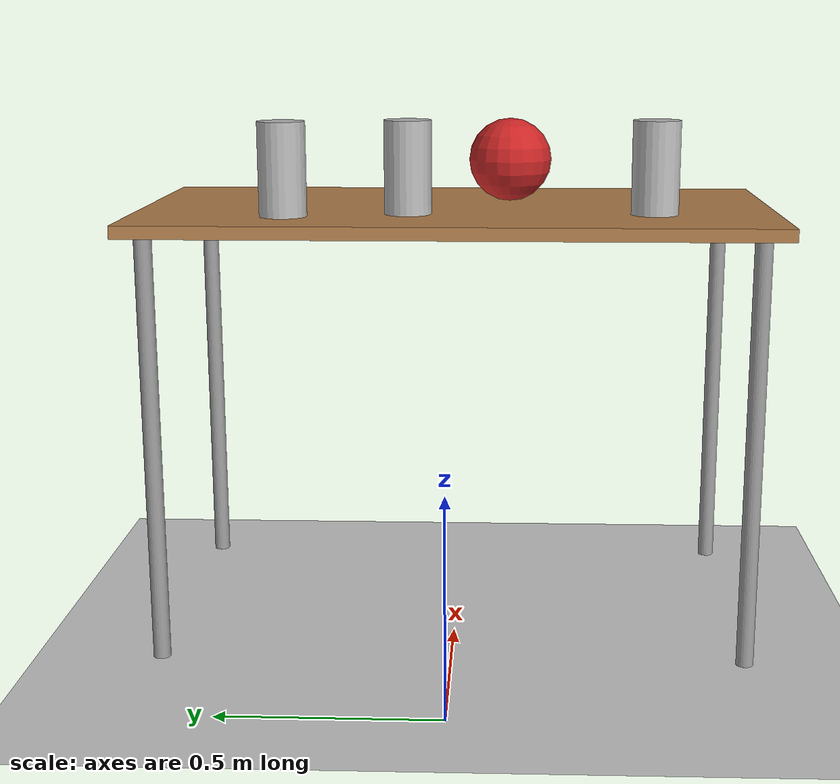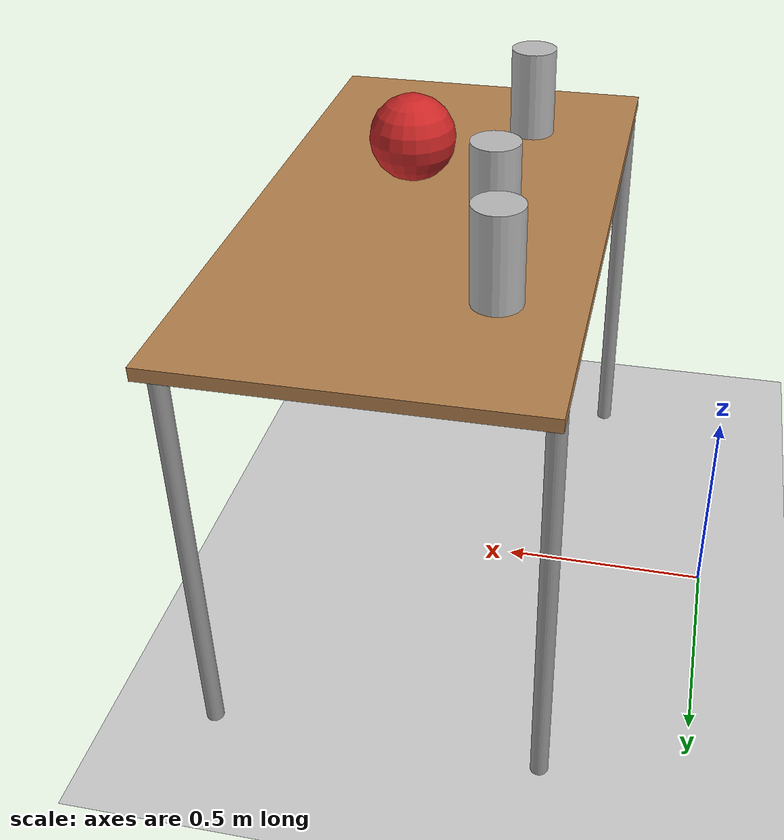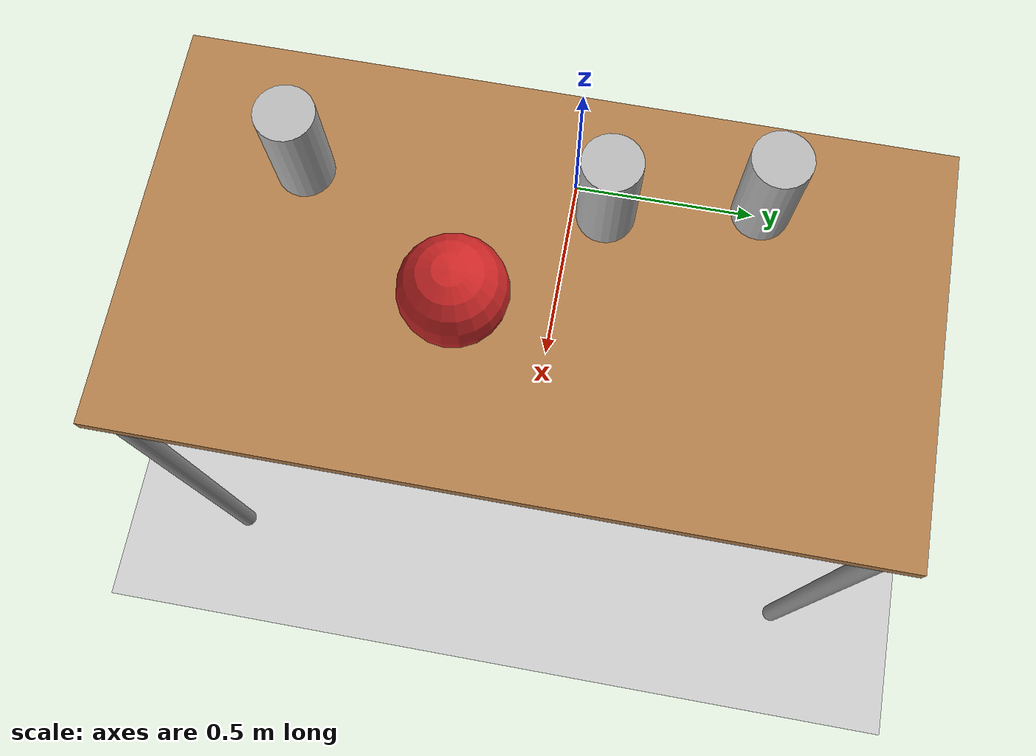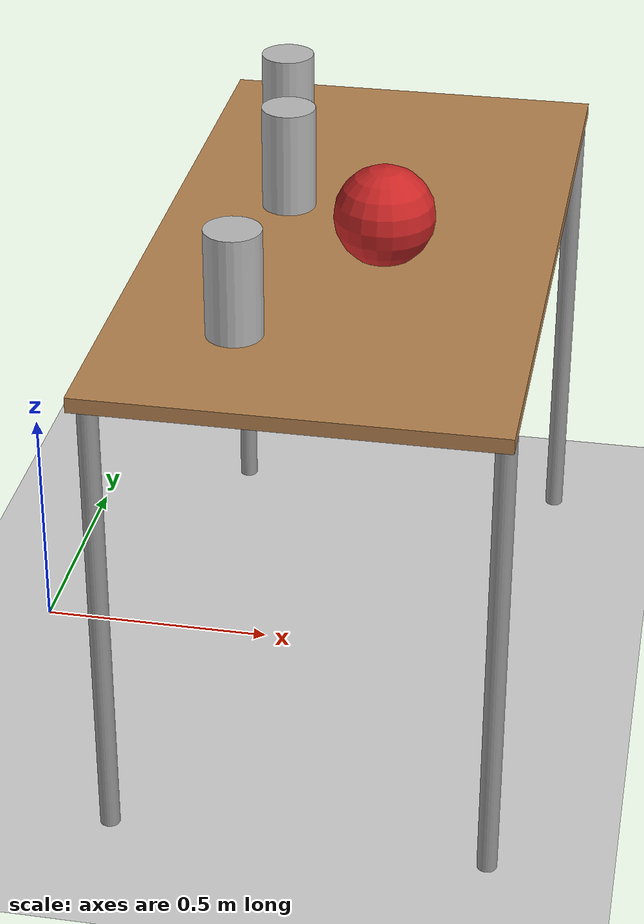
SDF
<sdf version="1.7">
 <world name="default">
  <light name="sun" type="directional">
   <pose>0 0 10 0 -0 0</pose>
   <diffuse>0.8 0.8 0.8 1</diffuse>
   <specular>0.2 0.2 0.2 1</specular>
   <attenuation>
    <range>1000</range>
    <constant>0.9</constant>
    <linear>0.01</linear>
    <quadratic>0.001</quadratic>
   </attenuation>
   <direction>-0.5 0.1 -0.9</direction>
   <spot><inner_angle>0</inner_angle><outer_angle>0</outer_angle><falloff>0</falloff></spot>
  </light>
  <model name="ground_plane">
   <static>1</static>
   <link name="link">
    <collision name="collision">
     <geometry><plane><normal>0 0 1</normal><size>100 100</size></plane></geometry>
     <surface>
      <contact><collide_bitmask>65535</collide_bitmask></contact>
      <friction><ode><mu>100</mu><mu2>50</mu2></ode></friction>
     </surface>
    </collision>
    <visual name="visual">
     <cast_shadows>0</cast_shadows>
     <geometry><plane><normal>0 0 1</normal><size>100 100</size></plane></geometry>
     <material>
      <script><uri>file://media/materials/scripts/gazebo.material</uri><name>Gazebo/Grey</name></script>
     </material>
    </visual>
   </link>
  </model>
  <gravity>0 0 -9.8</gravity>
  <magnetic_field>6e-06 2.3e-05 -4.2e-05</magnetic_field>
  <atmosphere type="adiabatic"/>
  <physics type="ode">
   <max_step_size>0.001</max_step_size>
   <real_time_factor>1</real_time_factor>
   <real_time_update_rate>1000</real_time_update_rate>
  </physics>
  <scene><ambient>0.4 0.4 0.4 1</ambient><background>0.7 0.7 0.7 1</background><shadows>1</shadows></scene>
  <spherical_coordinates>
   <surface_model>EARTH_WGS84</surface_model>
   <latitude_deg>0</latitude_deg>
   <longitude_deg>0</longitude_deg>
   <elevation>0</elevation>
   <heading_deg>0</heading_deg>
  </spherical_coordinates>
  <model name="table">
   <static>1</static>
   <link name="link">
    <collision name="surface">
     <pose>0 0 1 0 -0 0</pose>
     <geometry><box><size>1.5 0.8 0.03</size></box></geometry>
     <surface><friction><ode><mu>0.6</mu><mu2>0.6</mu2></ode></friction></surface>
    </collision>
    <visual name="visual1">
     <pose>0 0 1 0 -0 0</pose>
     <geometry><box><size>1.5 0.8 0.03</size></box></geometry>
     <material>
      <script><uri>file://media/materials/scripts/gazebo.material</uri><name>Gazebo/Wood</name></script>
     </material>
    </visual>
    <collision name="front_left_leg">
     <pose>0.68 0.38 0.5 0 -0 0</pose>
     <geometry><cylinder><radius>0.02</radius><length>1</length></cylinder></geometry>
    </collision>
    <visual name="front_left_leg">
     <pose>0.68 0.38 0.5 0 -0 0</pose>
     <geometry><cylinder><radius>0.02</radius><length>1</length></cylinder></geometry>
     <material>
      <script><uri>file://media/materials/scripts/gazebo.material</uri><name>Gazebo/Grey</name></script>
     </material>
    </visual>
    <collision name="front_right_leg">
     <pose>0.68 -0.38 0.5 0 -0 0</pose>
     <geometry><cylinder><radius>0.02</radius><length>1</length></cylinder></geometry>
    </collision>
    <visual name="front_right_leg">
     <pose>0.68 -0.38 0.5 0 -0 0</pose>
     <geometry><cylinder><radius>0.02</radius><length>1</length></cylinder></geometry>
     <material>
      <script><uri>file://media/materials/scripts/gazebo.material</uri><name>Gazebo/Grey</name></script>
     </material>
    </visual>
    <collision name="back_right_leg">
     <pose>-0.68 -0.38 0.5 0 -0 0</pose>
     <geometry><cylinder><radius>0.02</radius><length>1</length></cylinder></geometry>
    </collision>
    <visual name="back_right_leg">
     <pose>-0.68 -0.38 0.5 0 -0 0</pose>
     <geometry><cylinder><radius>0.02</radius><length>1</length></cylinder></geometry>
     <material>
      <script><uri>file://media/materials/scripts/gazebo.material</uri><name>Gazebo/Grey</name></script>
     </material>
    </visual>
    <collision name="back_left_leg">
     <pose>-0.68 0.38 0.5 0 -0 0</pose>
     <geometry><cylinder><radius>0.02</radius><length>1</length></cylinder></geometry>
    </collision>
    <visual name="back_left_leg">
     <pose>-0.68 0.38 0.5 0 -0 0</pose>
     <geometry><cylinder><radius>0.02</radius><length>1</length></cylinder></geometry>
     <material>
      <script><uri>file://media/materials/scripts/gazebo.material</uri><name>Gazebo/Grey</name></script>
     </material>
    </visual>
   </link>
   <pose>0.7 0 0 0 -0 1.57</pose>
  </model>
  <model name="unit_sphere">
   <link name="link">
    <inertial>
     <mass>1</mass>
     <inertia><ixx>0.1</ixx><ixy>0</ixy><ixz>0</ixz><iyy>0.1</iyy><iyz>0</iyz><izz>0.1</izz></inertia>
     <pose>0.7 0 0 0 -0 0</pose>
    </inertial>
    <visual name="visual">
     <geometry><sphere><radius>0.1</radius></sphere></geometry>
     <material>
      <script><name>Gazebo/Red</name><uri>file://media/materials/scripts/gazebo.material</uri></script>
      <shader type="pixel"><normal_map>__default__</normal_map></shader>
      <ambient>0.3 0.3 0.3 1</ambient>
      <diffuse>0.7 0.7 0.7 1</diffuse>
      <specular>0.01 0.01 0.01 1</specular>
      <emissive>0 0 0 1</emissive>
     </material>
     <pose>1.3 0.6 0.62 0 -0 0</pose>
    </visual>
    <collision name="collision">
     <pose>1.3 0.6 0.62 0 -0 0</pose>
     <geometry><sphere><radius>0.1</radius></sphere></geometry>
     <surface>
      <friction>
       <ode><mu>1</mu><mu2>1</mu2><fdir1>0 0 0</fdir1><slip1>0</slip1><slip2>0</slip2></ode>
       <torsional>
        <coefficient>1</coefficient>
        <patch_radius>0</patch_radius>
        <surface_radius>0</surface_radius>
        <use_patch_radius>1</use_patch_radius>
        <ode><slip>0</slip></ode>
       </torsional>
      </friction>
      <bounce><restitution_coefficient>0</restitution_coefficient><threshold>1e+06</threshold></bounce>
      <contact>
       <collide_without_contact>0</collide_without_contact>
       <collide_without_contact_bitmask>1</collide_without_contact_bitmask>
       <collide_bitmask>1</collide_bitmask>
       <ode>
        <soft_cfm>0</soft_cfm>
        <soft_erp>0.2</soft_erp>
        <kp>1e+13</kp>
        <kd>1</kd>
        <max_vel>0.01</max_vel>
        <min_depth>0</min_depth>
       </ode>
       <bullet>
        <split_impulse>1</split_impulse>
        <split_impulse_penetration_threshold>-0.01</split_impulse_penetration_threshold>
        <soft_cfm>0</soft_cfm>
        <soft_erp>0.2</soft_erp>
        <kp>1e+13</kp>
        <kd>1</kd>
       </bullet>
      </contact>
     </surface>
    </collision>
   </link>
   <static>0</static>
   <pose>-0.526489 -0.726818 0.5 0 -0 0</pose>
  </model>
  <model name="beer">
   <link name="link">
    <pose>0 0 0.115 0 -0 0</pose>
    <inertial>
     <mass>0.39</mass>
     <inertia><ixx>0.00058</ixx><ixy>0</ixy><ixz>0</ixz><iyy>0.00058</iyy><iyz>0</iyz><izz>0.00019</izz></inertia>
    </inertial>
    <collision name="collision">
     <geometry><cylinder><radius>0.055</radius><length>0.23</length></cylinder></geometry>
    </collision>
    <visual name="visual">
     <geometry><cylinder><radius>0.055</radius><length>0.23</length></cylinder></geometry>
     <material>
      <script>
       <uri>model://beer/materials/scripts</uri>
       <uri>model://beer/materials/textures</uri>
       <name>Beer/Diffuse</name>
      </script>
     </material>
    </visual>
   </link>
   <pose>0.482685 0.39182 1 0 -0 0</pose>
  </model>
  <model name="beer_clone">
   <link name="link">
    <pose>0 0 0.115 0 -0 0</pose>
    <inertial>
     <mass>0.39</mass>
     <inertia><ixx>0.00058</ixx><ixy>0</ixy><ixz>0</ixz><iyy>0.00058</iyy><iyz>0</iyz><izz>0.00019</izz></inertia>
    </inertial>
    <collision name="collision">
     <geometry><cylinder><radius>0.055</radius><length>0.23</length></cylinder></geometry>
    </collision>
    <visual name="visual">
     <geometry><cylinder><radius>0.055</radius><length>0.23</length></cylinder></geometry>
     <material>
      <script>
       <uri>model://beer/materials/scripts</uri>
       <uri>model://beer/materials/textures</uri>
       <name>Beer/Diffuse</name>
      </script>
     </material>
    </visual>
   </link>
   <pose>0.546092 -0.46162 1 0 -0 0</pose>
  </model>
  <model name="beer_clone_0">
   <link name="link">
    <pose>0 0 0.115 0 -0 0</pose>
    <inertial>
     <mass>0.39</mass>
     <inertia><ixx>0.00058</ixx><ixy>0</ixy><ixz>0</ixz><iyy>0.00058</iyy><iyz>0</iyz><izz>0.00019</izz></inertia>
    </inertial>
    <collision name="collision">
     <geometry><cylinder><radius>0.055</radius><length>0.23</length></cylinder></geometry>
    </collision>
    <visual name="visual">
     <geometry><cylinder><radius>0.055</radius><length>0.23</length></cylinder></geometry>
     <material>
      <script>
       <uri>model://beer/materials/scripts</uri>
       <uri>model://beer/materials/textures</uri>
       <name>Beer/Diffuse</name>
      </script>
     </material>
    </visual>
   </link>
   <pose>0.538966 0.108641 1 0 -0 0</pose>
  </model>
 </world>
</sdf>
